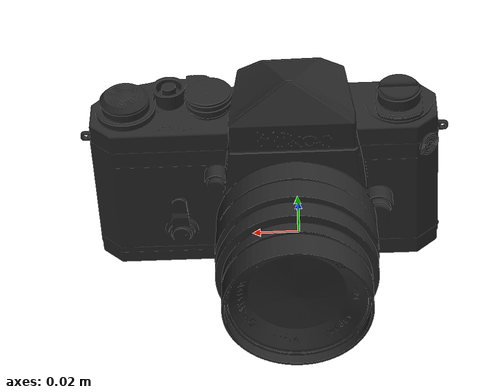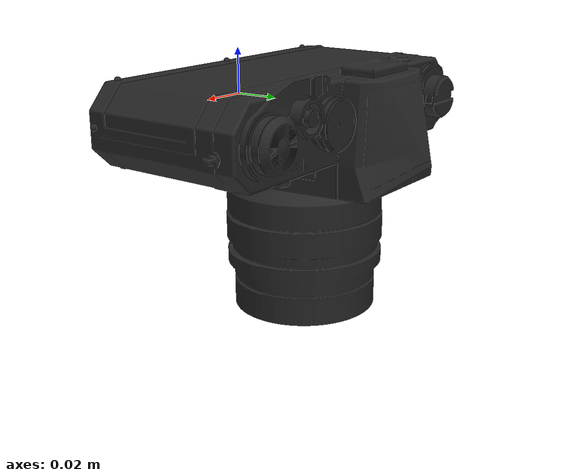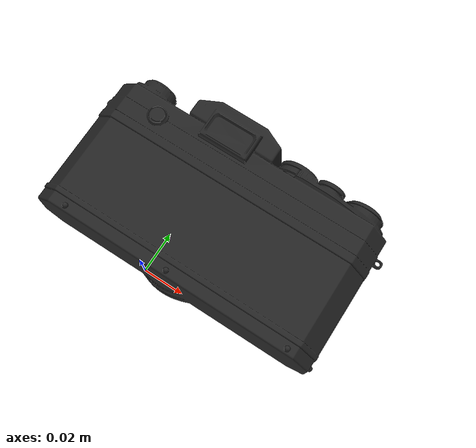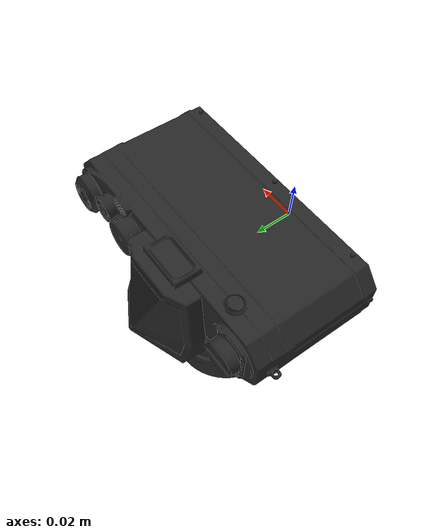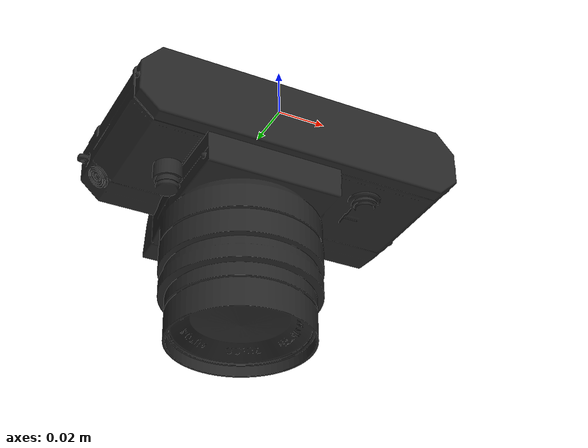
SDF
<?xml version="1.0" ?>
<sdf version="1.6">
  <model name="analog_camera">
    <static>false</static>
    <link name="link">
      <visual name="visual">
        <geometry>
          <mesh>
            <uri>model://96-camara-analogica_byquuimey/Camara_Analogica.obj</uri>
          </mesh>
        </geometry>
        <transparency>0</transparency>
        <cast_shadows>false</cast_shadows>
        <material>
          <render_order>1</render_order>
          <lighting>true</lighting>

          <ambient>0.15 0.15 0.15 1</ambient>
          <diffuse>0.15 0.15 0.15 1</diffuse>
          <specular>0.2 0.2 0.2 1</specular>
          <emissive>0 0 0 1</emissive>

          <shader type="pixel"/>
        </material>
      </visual>
      <collision name="collision">
        <geometry>
          <mesh>
            <uri>model://96-camara-analogica_byquuimey/Camara_Analogica.obj</uri>
          </mesh>
        </geometry>
      </collision>
    </link>
  </model>
</sdf>
